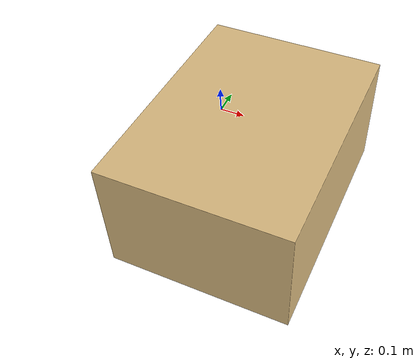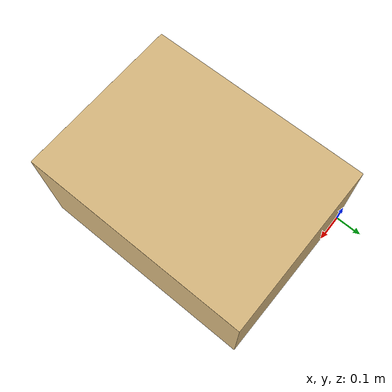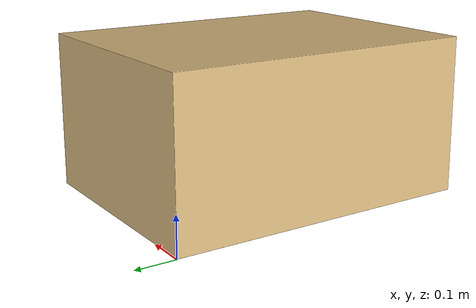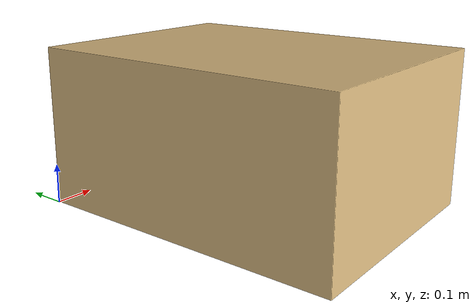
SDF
<sdf version="1.7">
<model name="box_600x800x400" canonical_link="node0_link">
  <link name="node0_link">
    <collision name="node0_collision">
      <pose relative_to="node0_link">0.00000 0.00000 0.00000 0.00000 0.00000 0.00000</pose>
      <geometry>
        <mesh>
          <uri>meshes/Body.dae</uri>
          <scale>1.00000 1.00000 1.00000</scale>
        </mesh>
      </geometry>
      <surface>
        <contact><ode>  <max_vel>0.001</max_vel><min_depth>0.01</min_depth><kd>1e15</kd>  </ode></contact>
      </surface>
    </collision>
    <inertial>
      <inertia>
        <ixx>6.66660</ixx>
        <ixy>-0.00000</ixy>
        <ixz>-0.00000</ixz>
        <iyy>4.33328</iyy>
        <iyz>-0.00000</iyz>
        <izz>8.33325</izz>
      </inertia>
      <pose relative_to="node0_link">0.30000 -0.40000 0.20000 0.00000 0.00000 0.00000</pose>
      <mass>100.00000</mass>
    </inertial>
    <visual name="node0">
      <material>
        <diffuse>0.85882 0.73333 0.50588 1.00000</diffuse>
        <specular>0.42745 0.36471 0.25098 0.49804</specular>
        <emissive>0.00000 0.00000 0.00000 1.00000</emissive>
      </material>
      <pose relative_to="node0_link">0.00000 0.00000 0.00000 0.00000 0.00000 0.00000</pose>
      <geometry>
        <mesh>
          <uri>meshes/Body.dae</uri>
          <scale>1.00000 1.00000 1.00000</scale>
        </mesh>
      </geometry>
    </visual>
  </link>
</model>
</sdf>
